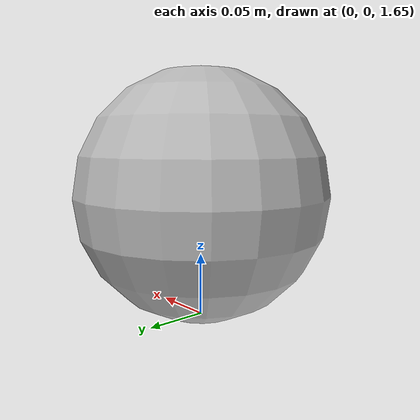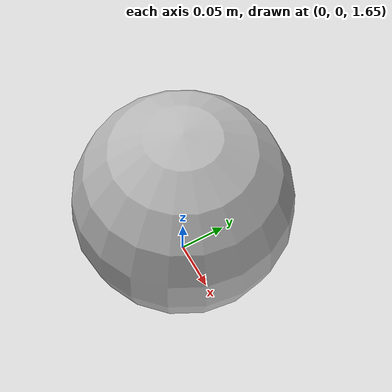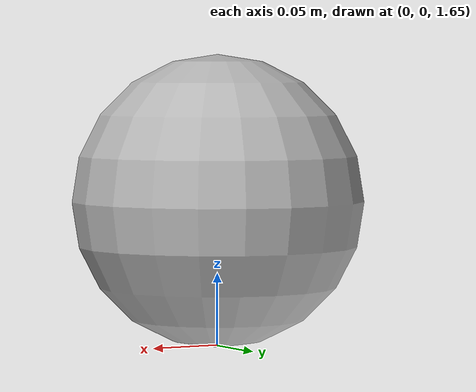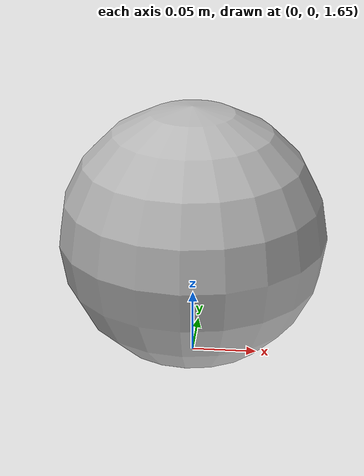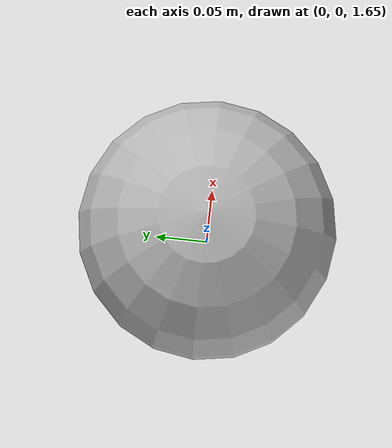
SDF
<?xml version="1.0"?>
<sdf version="1.6">
  <model name="buoy">
    <pose>0 0 0 0 0 0</pose>
    <static>true</static>
      <link name="buoy">
        <pose>0 0 1.75 0 0 0</pose>
        <collision name="collision">
          <geometry>
            <sphere>
              <radius>0.1015</radius>
            </sphere>
          </geometry>
        </collision>
        <visual name="visual">
          <geometry>
            <sphere>
              <radius>0.1015</radius>
            </sphere>
          </geometry>
        </visual>
      </link>
  </model>
</sdf>
